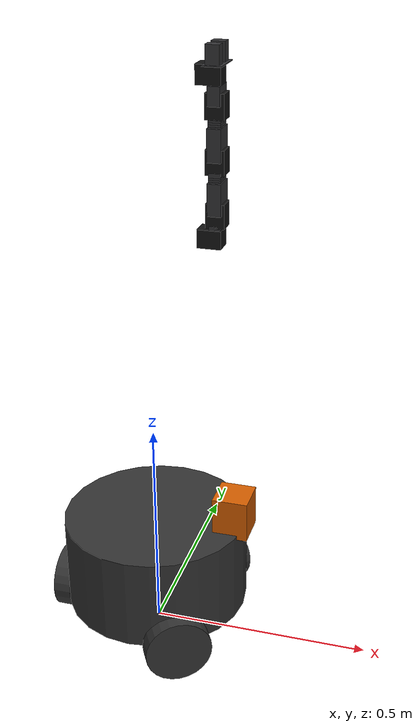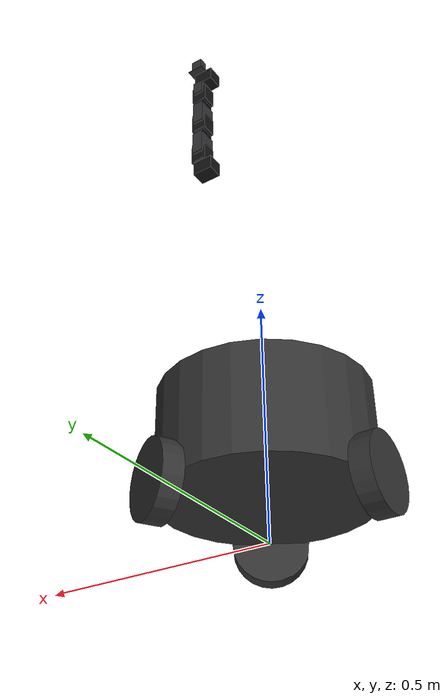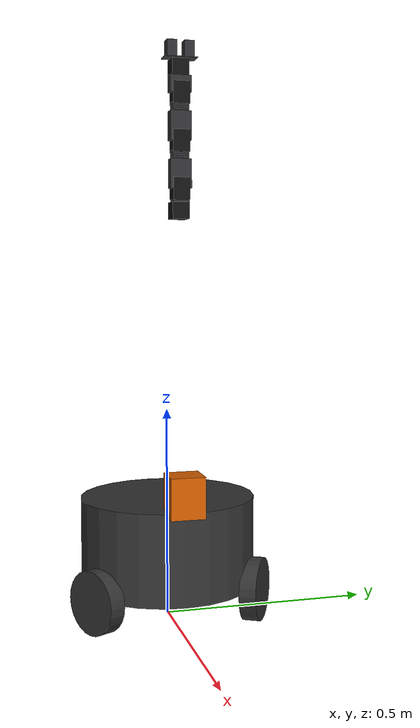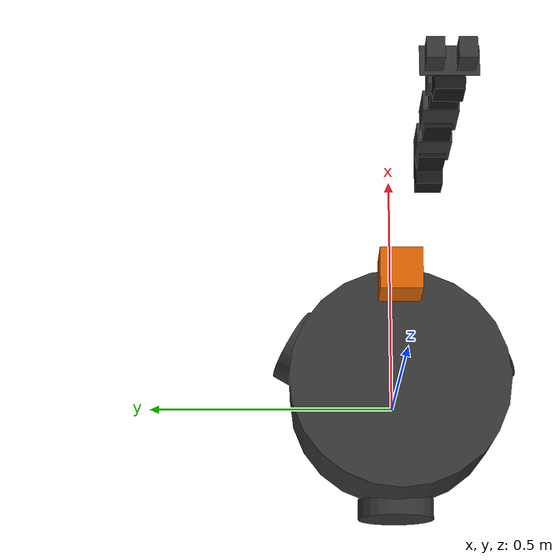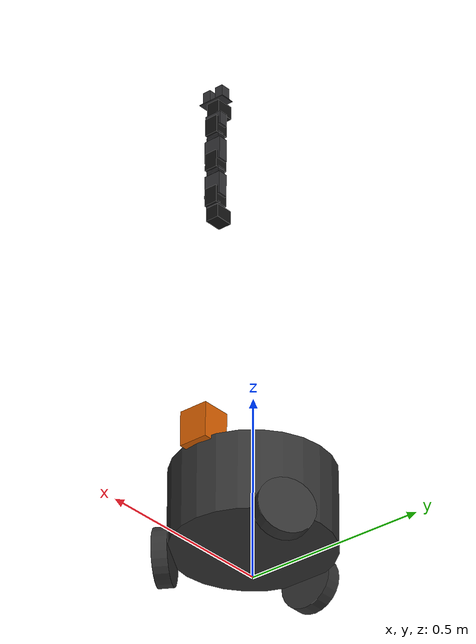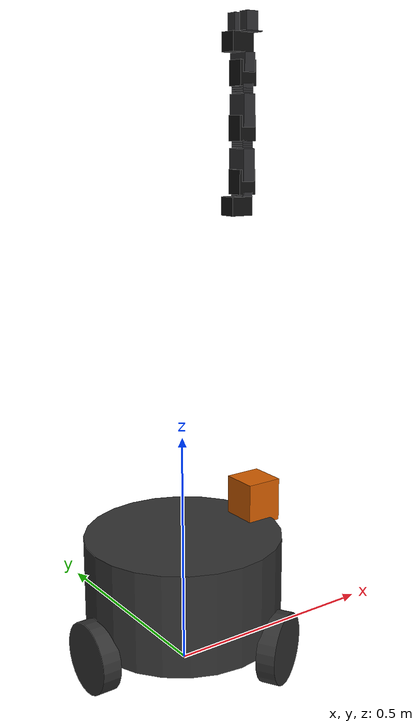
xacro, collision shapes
<?xml version="1.0" encoding="utf-8"?>
<!-- |    This document was autogenerated by xacro from miztli_arm.urdf                | -->
<!-- |    EDITING THIS FILE BY HAND IS NOT RECOMMENDED                                 | -->
<!-- |    This document was autogenerated by xacro from miztli.xacro                   | -->
<!-- |    EDITING THIS FILE BY HAND IS NOT RECOMMENDED                                 | -->
<robot name="justina">
  <gazebo reference="octo_base_link">
    <material>Gazebo/blue</material>
  </gazebo>
  <gazebo reference="wheel_left">
    <material>Gazebo/Black</material>
  </gazebo>
  <gazebo reference="wheel_right">
    <material>Gazebo/Black</material>
  </gazebo>
  <gazebo reference="wheel_front">
    <material>Gazebo/Black</material>
  </gazebo>
  <gazebo reference="wheel_back">
    <material>Gazebo/Black</material>
  </gazebo>
  <gazebo>
    <plugin filename="libgazebo_ros_control.so" name="gazebo_ros_control">
      <robotNamespace>/justina</robotNamespace>
    </plugin>
  </gazebo>
  <gazebo>
    <plugin filename="libgazebo_ros_diff_drive.so" name="differential_drive_controller">
      <legacyMode>false</legacyMode>
      <alwaysOn>true</alwaysOn>
      <updateRate>100</updateRate>
      <leftJoint>wheel_front_left_connect</leftJoint>
      <rightJoint>wheel_front_right_connect</rightJoint>
      <wheelSeparation>0.46</wheelSeparation>
      <wheelDiameter>0.12</wheelDiameter>
      <torque>20</torque>
      <commandTopic>justina/cmd_vel</commandTopic>
      <odometryTopic>justina/odom_diffdrive</odometryTopic>
      <odometryFrame>odom</odometryFrame>
      <robotBaseFrame>base_link</robotBaseFrame>
    </plugin>
  </gazebo>
  <gazebo reference="laser_link">
    <sensor name="head_hokuyo_sensor" type="gpu_ray">
      <pose>0 0 0 0 0 0</pose>
      <visualize>false</visualize>
      <update_rate>40</update_rate>
      <ray>
        <scan>
          <horizontal>
            <samples>720</samples>
            <resolution>1</resolution>
            <min_angle>-1.570796</min_angle>
            <max_angle>1.570796</max_angle>
          </horizontal>
        </scan>
        <range>
          <min>0.10</min>
          <max>30.0</max>
          <resolution>0.01</resolution>
        </range>
        <noise>
          <type>gaussian</type>
          <mean>0.0</mean>
          <stddev>0.01</stddev>
        </noise>
      </ray>
      <plugin filename="libgazebo_ros_gpu_laser.so" name="gazebo_ros_head_hokuyo_controller">
        <topicName>/rrbot/laser/scan</topicName>
        <frameName>laser_link</frameName>
      </plugin>
    </sensor>
  </gazebo>
  <material name="black">
    <color rgba="0.0 0.0 0.0 1.0"/>
  </material>
  <material name="blue">
    <color rgba="0.0 0.0 0.8 1.0"/>
  </material>
  <material name="green">
    <color rgba="0.0 0.8 0.0 1.0"/>
  </material>
  <material name="grey">
    <color rgba="0.2 0.2 0.2 1.0"/>
  </material>
  <material name="orange">
    <color rgba="1.0 0.423529411765 0.0392156862745 1.0"/>
  </material>
  <material name="brown">
    <color rgba="0.870588235294 0.811764705882 0.764705882353 1.0"/>
  </material>
  <material name="red">
    <color rgba="0.8 0.0 0.0 1.0"/>
  </material>
  <material name="white">
    <color rgba="1.0 1.0 1.0 1.0"/>
  </material>
  <link name="base_link"/>
  <joint name="hex_base_connect" type="fixed">
    <origin rpy="0 0 0" xyz="0 0 0"/>
    <parent link="base_link"/>
    <child link="hex_base_link"/>
  </joint>
  <link name="hex_base_link">
    <visual>
      <origin rpy="0.0 0 1.5708" xyz="0.0 0.0 0.075"/>
      <!-- origin xyz="0 0 0.1828" rpy="0 0 0"/ -->
      <geometry>
        <mesh filename="package://knowledge/hardware/stl/base/baseHex.dae"/>
        <!-- cylinder length="${base_height}" radius="${base_radius}"/ -->
      </geometry>
      <material name="grey"/>
    </visual>
    <collision>
      <origin rpy="0 0 0" xyz="0 0 0.1828"/>
      <geometry>
        <cylinder length="0.2156" radius="0.21"/>
      </geometry>
    </collision>
    <inertial>
      <origin rpy="0 0 0" xyz="0 0 0.1828"/>
      <mass value="2.0"/>
      <inertia ixx="0.0297972266667" ixy="0" ixz="0" iyy="0.0297972266667" iyz="0" izz="0.0441"/>
    </inertial>
  </link>
  <joint name="wheel_front_left_connect" type="continuous">
    <origin rpy="1.57078 0 -3.67" xyz="0.1091 0.189 0.075"/>
    <parent link="hex_base_link"/>
    <child link="wheel_front_left"/>
    <axis xyz="0 0 1"/>
  </joint>
  <link name="wheel_front_left">
    <visual>
      <origin rpy="0 3.1416 0" xyz="0 0 0"/>
      <geometry>
        <mesh filename="package://knowledge/hardware/stl/base/rueda.dae"/>
        <!-- cylinder length="${wheel_height}" radius="${wheel_radius}"/ -->
      </geometry>
      <material name="grey"/>
    </visual>
    <collision>
      <origin rpy="0 0 0" xyz="0 0 0"/>
      <geometry>
        <cylinder length="0.04" radius="0.075"/>
      </geometry>
    </collision>
    <inertial>
      <origin xyz="0 0 0"/>
      <mass value="0.52098"/>
      <inertia ixx="0.000802092125" ixy="0" ixz="0" iyy="0.000802092125" iyz="0" izz="0.00146525625"/>
    </inertial>
  </link>
  <joint name="wheel_back_connect" type="continuous">
    <origin rpy="1.57078 0 -1.5708" xyz="-0.2182 0 0.075"/>
    <parent link="hex_base_link"/>
    <child link="wheel_back"/>
    <axis xyz="0 0 1"/>
  </joint>
  <link name="wheel_back">
    <visual>
      <origin rpy="0 3.1416 0" xyz="0 0 0"/>
      <geometry>
        <mesh filename="package://knowledge/hardware/stl/base/rueda.dae"/>
        <!-- cylinder length="${wheel_height}" radius="${wheel_radius}"/ -->
      </geometry>
      <material name="grey"/>
    </visual>
    <collision>
      <origin rpy="0 0 0" xyz="0 0 0"/>
      <geometry>
        <cylinder length="0.04" radius="0.075"/>
      </geometry>
    </collision>
    <inertial>
      <origin rpy="0 0 0" xyz="0 0 0"/>
      <mass value="0.52098"/>
      <inertia ixx="0.000802092125" ixy="0" ixz="0" iyy="0.000802092125" iyz="0" izz="0.00146525625"/>
    </inertial>
  </link>
  <joint name="wheel_front_right_connect" type="continuous">
    <origin rpy="1.57078 0 3.67" xyz="0.1091 -0.189 0.075"/>
    <parent link="hex_base_link"/>
    <child link="wheel_front_right"/>
    <axis xyz="0 0 1"/>
  </joint>
  <link name="wheel_front_right">
    <visual>
      <origin rpy="0 0 0" xyz="0 0 0"/>
      <geometry>
        <mesh filename="package://knowledge/hardware/stl/base/rueda.dae"/>
        <!-- cylinder length="${wheel_height}" radius="${wheel_radius}"/ -->
      </geometry>
      <material name="grey"/>
    </visual>
    <collision>
      <origin rpy="0 0 0" xyz="0 0 0"/>
      <geometry>
        <cylinder length="0.04" radius="0.075"/>
      </geometry>
    </collision>
    <inertial>
      <origin rpy="0 0 0" xyz="0 0 0"/>
      <mass value="0.52098"/>
      <inertia ixx="0.000802092125" ixy="0" ixz="0" iyy="0.000802092125" iyz="0" izz="0.00146525625"/>
    </inertial>
  </link>
  <joint name="laser_connect" type="fixed">
    <origin xyz="0.187 0 0.3276"/>
    <parent link="hex_base_link"/>
    <child link="laser"/>
  </joint>
  <link name="laser">
    <collision>
      <origin rpy="0 0 0" xyz="0 0 0"/>
      <geometry>
        <box size="0.08 0.08 0.095"/>
      </geometry>
    </collision>
    <visual>
      <origin rpy="0 0 0" xyz="0 0 0"/>
      <geometry>
        <mesh filename="package://knowledge/hardware/stl/hokuyo.dae"/>
      </geometry>
    </visual>
    <inertial>
      <mass value="0.01"/>
      <origin rpy="0 0 0" xyz="0 0 0"/>
      <inertia ixx="1.28541666667e-05" ixy="0" ixz="0" iyy="1.28541666667e-05" iyz="0" izz="1.28541666667e-05"/>
    </inertial>
  </link>
  <!--
 #################################
	wheels links and Joint
  ################################
    -->
  <transmission name="tran1">
    <type>transmission_interface/SimpleTransmission</type>
    <joint name="wheel_front_left_connect">
      <hardwareInterface>hardware_interface/EffortJointInterface</hardwareInterface>
    </joint>
    <actuator name="motor1">
      <hardwareInterface>hardware_interface/EffortJointInterface</hardwareInterface>
      <mechanicalReduction>16</mechanicalReduction>
    </actuator>
  </transmission>
  <transmission name="tran2">
    <type>transmission_interface/SimpleTransmission</type>
    <joint name="wheel_back_left_connect">
      <hardwareInterface>hardware_interface/EffortJointInterface</hardwareInterface>
    </joint>
    <actuator name="motor2">
      <hardwareInterface>hardware_interface/EffortJointInterface</hardwareInterface>
      <mechanicalReduction>16</mechanicalReduction>
    </actuator>
  </transmission>
  <transmission name="tran3">
    <type>transmission_interface/SimpleTransmission</type>
    <joint name="wheel_back_right_connect">
      <hardwareInterface>hardware_interface/EffortJointInterface</hardwareInterface>
    </joint>
    <actuator name="motor3">
      <hardwareInterface>hardware_interface/EffortJointInterface</hardwareInterface>
      <mechanicalReduction>16</mechanicalReduction>
    </actuator>
  </transmission>
  <transmission name="tran4">
    <type>transmission_interface/SimpleTransmission</type>
    <joint name="wheel_front_right_connect">
      <hardwareInterface>hardware_interface/EffortJointInterface</hardwareInterface>
    </joint>
    <actuator name="motor4">
      <hardwareInterface>hardware_interface/EffortJointInterface</hardwareInterface>
      <mechanicalReduction>16</mechanicalReduction>
    </actuator>
  </transmission>
  <!-- Kinect o stereo camera-->
  <link name="camera_link">
    <visual>
      <geometry>
        <!--box size="0.06 0.28 0.08"/-->
        <box size="0.06 0.28 0.04"/>
      </geometry>
      <origin rpy="0 0 0" xyz="0 0 0"/>
    </visual>
  </link>
  <joint name="base_to_camera" type="fixed">
    <parent link="hex_base_link"/>
    <child link="camera_link"/>
    <origin rpy="0 0 0" xyz="-0.06 0.0 1.23"/>
  </joint>
  <!-- ************Arm************ -->
  <link name="arm_base_link">
    <visual>
      <geometry>
        <box size="0.05 0.02 0.04"/>
      </geometry>
      <origin rpy="0 0 0" xyz="0 0 0"/>
    </visual>
  </link>
  <joint name="base_to_arm" type="fixed">
    <parent link="hex_base_link"/>
    <child link="arm_base_link"/>
    <origin rpy="0 0 0" xyz="0.15 0.0 0.97"/>
  </joint>
  <!-- 300 degrees -->
  <material name="White">
    <color rgba="0.87 0.90 0.87 1.0"/>
  </material>
  <material name="Black">
    <color rgba="0.08 0.08 0.08 1.0"/>
  </material>
  <material name="Gray">
    <color rgba="0.2 0.2 0.21 1.0"/>
  </material>
  <material name="Green">
    <color rgba="0.22 0.32 0.14 1.0"/>
  </material>
  <!--link name="arm_base_link"/-->
  <joint name="arm_shoulder_pan_servo_joint" type="fixed">
    <origin rpy="1.57079632679 0 1.57079632679" xyz="0 0 0"/>
    <parent link="arm_base_link"/>
    <child link="arm_shoulder_pan_servo_link"/>
  </joint>
  <link name="arm_shoulder_pan_servo_link">
    <inertial>
      <mass value="0.055"/>
      <origin xyz="0 0 -0.01241"/>
      <inertia ixx="1.80766666667e-05" ixy="0" ixz="0" iyy="1.82519791667e-05" iyz="0" izz="1.34119791667e-05"/>
    </inertial>
    <visual>
      <origin rpy="0 0 0" xyz="0 0 0"/>
      <geometry>
        <mesh filename="package://pincher_arm_description/meshes/ax12_box.stl" scale="0.001 0.001 0.001"/>
      </geometry>
      <material name="Black"/>
    </visual>
    <collision>
      <origin rpy="0 0 0" xyz="0.0 0.0 -0.01241"/>
      <geometry>
        <box size="0.0385 0.038 0.05"/>
      </geometry>
    </collision>
  </link>
  <gazebo reference="arm_shoulder_pan_servo_link">
    <material>Gazebo/Black</material>
    <selfCollide>true</selfCollide>
    <gravity>true</gravity>
  </gazebo>
  <joint name="arm_shoulder_pan_joint" type="revolute">
    <origin rpy="-1.57079632679 1.57079632679 3.14159265359" xyz="0 0.019 0"/>
    <axis xyz="0 0 -1"/>
    <limit effort="30" lower="-2.617" upper="2.617" velocity="1.571"/>
    <dynamics friction="0.13"/>
    <parent link="arm_shoulder_pan_servo_link"/>
    <child link="arm_shoulder_pan_link"/>
  </joint>
  <link name="arm_shoulder_pan_link">
    <inertial>
      <mass value="0.008"/>
      <origin xyz="0 0 0"/>
      <inertia ixx="1.01666666667e-06" ixy="0" ixz="0" iyy="4.70666666667e-07" iyz="0" izz="1.37933333333e-06"/>
    </inertial>
    <visual>
      <origin rpy="0 0 0" xyz="0 0 0"/>
      <geometry>
        <mesh filename="package://pincher_arm_description/meshes/F3.stl" scale="0.001 0.001 0.001"/>
      </geometry>
      <material name="Gray"/>
    </visual>
    <collision>
      <origin rpy="0 0 0" xyz="0.0 0.0 -0.0045"/>
      <geometry>
        <box size="0.025 0.038 0.009"/>
      </geometry>
    </collision>
  </link>
  <gazebo reference="arm_shoulder_pan_link">
    <material>Gazebo/Gray</material>
    <selfCollide>true</selfCollide>
    <gravity>true</gravity>
  </gazebo>
  <joint name="arm_shoulder_lift_servo_joint" type="fixed">
    <origin rpy="0 3.14159265359 0" xyz="0 0 -0.0415"/>
    <parent link="arm_shoulder_pan_link"/>
    <child link="arm_shoulder_lift_servo_link"/>
  </joint>
  <link name="arm_shoulder_lift_servo_link">
    <inertial>
      <mass value="0.055"/>
      <origin xyz="0 0 -0.01241"/>
      <inertia ixx="1.80766666667e-05" ixy="0" ixz="0" iyy="1.82519791667e-05" iyz="0" izz="1.34119791667e-05"/>
    </inertial>
    <visual>
      <origin rpy="0 0 0" xyz="0 0 0"/>
      <geometry>
        <mesh filename="package://pincher_arm_description/meshes/ax12_box.stl" scale="0.001 0.001 0.001"/>
      </geometry>
      <material name="Black"/>
    </visual>
    <collision>
      <origin rpy="0 0 0" xyz="0.0 0.0 -0.01241"/>
      <geometry>
        <box size="0.0385 0.038 0.05"/>
      </geometry>
    </collision>
  </link>
  <gazebo reference="arm_shoulder_lift_servo_link">
    <material>Gazebo/Black</material>
    <selfCollide>true</selfCollide>
    <gravity>true</gravity>
  </gazebo>
  <joint name="arm_shoulder_lift_joint" type="revolute">
    <origin rpy="0 0 0" xyz="0 0 0"/>
    <axis xyz="0 1 0"/>
    <limit effort="30" lower="-2.09" upper="2.09" velocity="1.571"/>
    <dynamics friction="0.13"/>
    <parent link="arm_shoulder_lift_servo_link"/>
    <child link="arm_shoulder_lift_link"/>
  </joint>
  <link name="arm_shoulder_lift_link">
    <inertial>
      <mass value="0.016"/>
      <origin xyz="0 0 0"/>
      <inertia ixx="8.76966666667e-06" ixy="0" ixz="0" iyy="6.67866666667e-06" iyz="0" izz="4.18166666667e-06"/>
    </inertial>
    <visual>
      <origin rpy="0 0 0" xyz="0 0 0"/>
      <geometry>
        <mesh filename="package://pincher_arm_description/meshes/F4.stl" scale="0.001 0.001 0.001"/>
      </geometry>
      <material name="Gray"/>
    </visual>
    <collision>
      <origin rpy="0 0 0" xyz="0.0 0.0 0.0215"/>
      <geometry>
        <box size="0.028 0.0485 0.065"/>
      </geometry>
    </collision>
  </link>
  <gazebo reference="arm_shoulder_lift_link">
    <material>Gazebo/Gray</material>
    <selfCollide>true</selfCollide>
    <gravity>true</gravity>
  </gazebo>
  <joint name="arm_shoulder_F10_0_joint" type="fixed">
    <origin rpy="0 0 0" xyz="0 0 0.0545"/>
    <parent link="arm_shoulder_lift_link"/>
    <child link="arm_shoulder_F10_0_link"/>
  </joint>
  <link name="arm_shoulder_F10_0_link">
    <inertial>
      <mass value="0.004"/>
      <origin xyz="0 0 0"/>
      <inertia ixx="4.86666666667e-07" ixy="0" ixz="0" iyy="2.13666666667e-07" iyz="0" izz="6.89666666667e-07"/>
    </inertial>
    <visual>
      <origin rpy="0 0 0" xyz="0 0 0"/>
      <geometry>
        <mesh filename="package://pincher_arm_description/meshes/F10.stl" scale="0.001 0.001 0.001"/>
      </geometry>
      <material name="Gray"/>
    </visual>
    <collision>
      <origin rpy="0 0 0" xyz="0.0 0.0 0.0"/>
      <geometry>
        <box size="0.025 0.038 0.004"/>
      </geometry>
    </collision>
  </link>
  <gazebo reference="arm_shoulder_F10_0_link">
    <material>Gazebo/Gray</material>
    <selfCollide>true</selfCollide>
    <gravity>true</gravity>
  </gazebo>
  <joint name="arm_shoulder_F10_1_joint" type="fixed">
    <origin rpy="0 0 0" xyz="0 0 0.004"/>
    <parent link="arm_shoulder_F10_0_link"/>
    <child link="arm_shoulder_F10_1_link"/>
  </joint>
  <link name="arm_shoulder_F10_1_link">
    <inertial>
      <mass value="0.004"/>
      <origin xyz="0 0 0"/>
      <inertia ixx="4.86666666667e-07" ixy="0" ixz="0" iyy="2.13666666667e-07" iyz="0" izz="6.89666666667e-07"/>
    </inertial>
    <visual>
      <origin rpy="0 0 0" xyz="0 0 0"/>
      <geometry>
        <mesh filename="package://pincher_arm_description/meshes/F10.stl" scale="0.001 0.001 0.001"/>
      </geometry>
      <material name="Gray"/>
    </visual>
    <collision>
      <origin rpy="0 0 0" xyz="0.0 0.0 0.0"/>
      <geometry>
        <box size="0.025 0.038 0.004"/>
      </geometry>
    </collision>
  </link>
  <gazebo reference="arm_shoulder_F10_1_link">
    <material>Gazebo/Gray</material>
    <selfCollide>true</selfCollide>
    <gravity>true</gravity>
  </gazebo>
  <joint name="arm_shoulder_F10_2_joint" type="fixed">
    <origin rpy="0 0 0" xyz="0 0 0.004"/>
    <parent link="arm_shoulder_F10_1_link"/>
    <child link="arm_shoulder_F10_2_link"/>
  </joint>
  <link name="arm_shoulder_F10_2_link">
    <inertial>
      <mass value="0.004"/>
      <origin xyz="0 0 0"/>
      <inertia ixx="4.86666666667e-07" ixy="0" ixz="0" iyy="2.13666666667e-07" iyz="0" izz="6.89666666667e-07"/>
    </inertial>
    <visual>
      <origin rpy="0 0 0" xyz="0 0 0"/>
      <geometry>
        <mesh filename="package://pincher_arm_description/meshes/F10.stl" scale="0.001 0.001 0.001"/>
      </geometry>
      <material name="Gray"/>
    </visual>
    <collision>
      <origin rpy="0 0 0" xyz="0.0 0.0 0.0"/>
      <geometry>
        <box size="0.025 0.038 0.004"/>
      </geometry>
    </collision>
  </link>
  <gazebo reference="arm_shoulder_F10_2_link">
    <material>Gazebo/Gray</material>
    <selfCollide>true</selfCollide>
    <gravity>true</gravity>
  </gazebo>
  <joint name="arm_shoulder_F3_0_joint" type="fixed">
    <origin rpy="0 3.14159265359 0" xyz="0 0 0.002"/>
    <parent link="arm_shoulder_F10_2_link"/>
    <child link="arm_shoulder_F3_0_link"/>
  </joint>
  <link name="arm_shoulder_F3_0_link">
    <inertial>
      <mass value="0.005"/>
      <origin xyz="0 0 0"/>
      <inertia ixx="6.35416666667e-07" ixy="0" ixz="0" iyy="2.94166666667e-07" iyz="0" izz="8.62083333333e-07"/>
    </inertial>
    <visual>
      <origin rpy="0 0 0" xyz="0 0 0"/>
      <geometry>
        <mesh filename="package://pincher_arm_description/meshes/F3.stl" scale="0.001 0.001 0.001"/>
      </geometry>
      <material name="Gray"/>
    </visual>
    <collision>
      <origin rpy="0 0 0" xyz="0.0 0.0 -0.0045"/>
      <geometry>
        <box size="0.025 0.038 0.009"/>
      </geometry>
    </collision>
  </link>
  <gazebo reference="arm_shoulder_F3_0_link">
    <material>Gazebo/Gray</material>
    <selfCollide>true</selfCollide>
    <gravity>true</gravity>
  </gazebo>
  <joint name="arm_elbow_flex_servo_joint" type="fixed">
    <origin rpy="0 3.14159265359 0" xyz="0 0 -0.0415"/>
    <parent link="arm_shoulder_F3_0_link"/>
    <child link="arm_elbow_flex_servo_link"/>
  </joint>
  <link name="arm_elbow_flex_servo_link">
    <inertial>
      <mass value="0.055"/>
      <origin xyz="0 0 -0.01241"/>
      <inertia ixx="1.80766666667e-05" ixy="0" ixz="0" iyy="1.82519791667e-05" iyz="0" izz="1.34119791667e-05"/>
    </inertial>
    <visual>
      <origin rpy="0 0 0" xyz="0 0 0"/>
      <geometry>
        <mesh filename="package://pincher_arm_description/meshes/ax12_box.stl" scale="0.001 0.001 0.001"/>
      </geometry>
      <material name="Black"/>
    </visual>
    <collision>
      <origin rpy="0 0 0" xyz="0.0 0.0 -0.01241"/>
      <geometry>
        <box size="0.0385 0.038 0.05"/>
      </geometry>
    </collision>
  </link>
  <gazebo reference="arm_elbow_flex_servo_link">
    <material>Gazebo/Black</material>
    <selfCollide>true</selfCollide>
    <gravity>true</gravity>
  </gazebo>
  <joint name="arm_elbow_flex_joint" type="revolute">
    <origin rpy="0 0 0" xyz="0 0 0"/>
    <axis xyz="0 1 0"/>
    <limit effort="30" lower="-2.42" upper="2.42" velocity="1.571"/>
    <dynamics friction="0.13"/>
    <parent link="arm_elbow_flex_servo_link"/>
    <child link="arm_elbow_flex_link"/>
  </joint>
  <link name="arm_elbow_flex_link">
    <inertial>
      <mass value="0.016"/>
      <origin xyz="0 0 0"/>
      <inertia ixx="8.76966666667e-06" ixy="0" ixz="0" iyy="6.67866666667e-06" iyz="0" izz="4.18166666667e-06"/>
    </inertial>
    <visual>
      <origin rpy="0 0 0" xyz="0 0 0"/>
      <geometry>
        <mesh filename="package://pincher_arm_description/meshes/F4.stl" scale="0.001 0.001 0.001"/>
      </geometry>
      <material name="Gray"/>
    </visual>
    <collision>
      <origin rpy="0 0 0" xyz="0.0 0.0 0.0215"/>
      <geometry>
        <box size="0.028 0.0485 0.065"/>
      </geometry>
    </collision>
  </link>
  <gazebo reference="arm_elbow_flex_link">
    <material>Gazebo/Gray</material>
    <selfCollide>true</selfCollide>
    <gravity>true</gravity>
  </gazebo>
  <joint name="arm_elbow_F10_0_joint" type="fixed">
    <origin rpy="0 0 0" xyz="0 0 0.0545"/>
    <parent link="arm_elbow_flex_link"/>
    <child link="arm_elbow_F10_0_link"/>
  </joint>
  <link name="arm_elbow_F10_0_link">
    <inertial>
      <mass value="0.004"/>
      <origin xyz="0 0 0"/>
      <inertia ixx="4.86666666667e-07" ixy="0" ixz="0" iyy="2.13666666667e-07" iyz="0" izz="6.89666666667e-07"/>
    </inertial>
    <visual>
      <origin rpy="0 0 0" xyz="0 0 0"/>
      <geometry>
        <mesh filename="package://pincher_arm_description/meshes/F10.stl" scale="0.001 0.001 0.001"/>
      </geometry>
      <material name="Gray"/>
    </visual>
    <collision>
      <origin rpy="0 0 0" xyz="0.0 0.0 0.0"/>
      <geometry>
        <box size="0.025 0.038 0.004"/>
      </geometry>
    </collision>
  </link>
  <gazebo reference="arm_elbow_F10_0_link">
    <material>Gazebo/Gray</material>
    <selfCollide>true</selfCollide>
    <gravity>true</gravity>
  </gazebo>
  <joint name="arm_elbow_F10_1_joint" type="fixed">
    <origin rpy="0 0 0" xyz="0 0 0.004"/>
    <parent link="arm_elbow_F10_0_link"/>
    <child link="arm_elbow_F10_1_link"/>
  </joint>
  <link name="arm_elbow_F10_1_link">
    <inertial>
      <mass value="0.004"/>
      <origin xyz="0 0 0"/>
      <inertia ixx="4.86666666667e-07" ixy="0" ixz="0" iyy="2.13666666667e-07" iyz="0" izz="6.89666666667e-07"/>
    </inertial>
    <visual>
      <origin rpy="0 0 0" xyz="0 0 0"/>
      <geometry>
        <mesh filename="package://pincher_arm_description/meshes/F10.stl" scale="0.001 0.001 0.001"/>
      </geometry>
      <material name="Gray"/>
    </visual>
    <collision>
      <origin rpy="0 0 0" xyz="0.0 0.0 0.0"/>
      <geometry>
        <box size="0.025 0.038 0.004"/>
      </geometry>
    </collision>
  </link>
  <gazebo reference="arm_elbow_F10_1_link">
    <material>Gazebo/Gray</material>
    <selfCollide>true</selfCollide>
    <gravity>true</gravity>
  </gazebo>
  <joint name="arm_elbow_F10_2_joint" type="fixed">
    <origin rpy="0 0 0" xyz="0 0 0.004"/>
    <parent link="arm_elbow_F10_1_link"/>
    <child link="arm_elbow_F10_2_link"/>
  </joint>
  <link name="arm_elbow_F10_2_link">
    <inertial>
      <mass value="0.004"/>
      <origin xyz="0 0 0"/>
      <inertia ixx="4.86666666667e-07" ixy="0" ixz="0" iyy="2.13666666667e-07" iyz="0" izz="6.89666666667e-07"/>
    </inertial>
    <visual>
      <origin rpy="0 0 0" xyz="0 0 0"/>
      <geometry>
        <mesh filename="package://pincher_arm_description/meshes/F10.stl" scale="0.001 0.001 0.001"/>
      </geometry>
      <material name="Gray"/>
    </visual>
    <collision>
      <origin rpy="0 0 0" xyz="0.0 0.0 0.0"/>
      <geometry>
        <box size="0.025 0.038 0.004"/>
      </geometry>
    </collision>
  </link>
  <gazebo reference="arm_elbow_F10_2_link">
    <material>Gazebo/Gray</material>
    <selfCollide>true</selfCollide>
    <gravity>true</gravity>
  </gazebo>
  <joint name="arm_elbow_F3_0_joint" type="fixed">
    <origin rpy="0 3.14159265359 0" xyz="0 0 0.002"/>
    <parent link="arm_elbow_F10_2_link"/>
    <child link="arm_elbow_F3_0_link"/>
  </joint>
  <link name="arm_elbow_F3_0_link">
    <inertial>
      <mass value="0.005"/>
      <origin xyz="0 0 0"/>
      <inertia ixx="6.35416666667e-07" ixy="0" ixz="0" iyy="2.94166666667e-07" iyz="0" izz="8.62083333333e-07"/>
    </inertial>
    <visual>
      <origin rpy="0 0 0" xyz="0 0 0"/>
      <geometry>
        <mesh filename="package://pincher_arm_description/meshes/F3.stl" scale="0.001 0.001 0.001"/>
      </geometry>
      <material name="Gray"/>
    </visual>
    <collision>
      <origin rpy="0 0 0" xyz="0.0 0.0 -0.0045"/>
      <geometry>
        <box size="0.025 0.038 0.009"/>
      </geometry>
    </collision>
  </link>
  <gazebo reference="arm_elbow_F3_0_link">
    <material>Gazebo/Gray</material>
    <selfCollide>true</selfCollide>
    <gravity>true</gravity>
  </gazebo>
  <joint name="arm_wrist_flex_servo_joint" type="fixed">
    <origin rpy="0 3.14159265359 0" xyz="0 0 -0.0415"/>
    <parent link="arm_elbow_F3_0_link"/>
    <child link="arm_wrist_flex_servo_link"/>
  </joint>
  <link name="arm_wrist_flex_servo_link">
    <inertial>
      <mass value="0.055"/>
      <origin xyz="0 0 -0.01241"/>
      <inertia ixx="1.80766666667e-05" ixy="0" ixz="0" iyy="1.82519791667e-05" iyz="0" izz="1.34119791667e-05"/>
    </inertial>
    <visual>
      <origin rpy="0 0 0" xyz="0 0 0"/>
      <geometry>
        <mesh filename="package://pincher_arm_description/meshes/ax12_box.stl" scale="0.001 0.001 0.001"/>
      </geometry>
      <material name="Black"/>
    </visual>
    <collision>
      <origin rpy="0 0 0" xyz="0.0 0.0 -0.01241"/>
      <geometry>
        <box size="0.0385 0.038 0.05"/>
      </geometry>
    </collision>
  </link>
  <gazebo reference="arm_wrist_flex_servo_link">
    <material>Gazebo/Black</material>
    <selfCollide>true</selfCollide>
    <gravity>true</gravity>
  </gazebo>
  <joint name="arm_wrist_flex_joint" type="revolute">
    <origin rpy="0 0 0" xyz="0 0 0"/>
    <axis xyz="0 1 0"/>
    <limit effort="30" lower="-1.71" upper="1.79" velocity="1.571"/>
    <dynamics friction="0.13"/>
    <parent link="arm_wrist_flex_servo_link"/>
    <child link="arm_wrist_flex_link"/>
  </joint>
  <link name="arm_wrist_flex_link">
    <inertial>
      <mass value="0.01"/>
      <origin xyz="0 0 0"/>
      <inertia ixx="3.13208333333e-06" ixy="0" ixz="0" iyy="1.69270833333e-06" iyz="0" izz="2.48104166667e-06"/>
    </inertial>
    <visual>
      <origin rpy="0 0 0" xyz="0 0 0"/>
      <geometry>
        <mesh filename="package://pincher_arm_description/meshes/F2.stl" scale="0.001 0.001 0.001"/>
      </geometry>
      <material name="Gray"/>
    </visual>
    <collision>
      <origin rpy="0 0 0" xyz="0.0 0.0 0.00775"/>
      <geometry>
        <box size="0.025 0.0485 0.0375"/>
      </geometry>
    </collision>
  </link>
  <gazebo reference="arm_wrist_flex_link">
    <material>Gazebo/Gray</material>
    <selfCollide>true</selfCollide>
    <gravity>true</gravity>
  </gazebo>
  <joint name="arm_wrist_F3_0_joint" type="fixed">
    <origin rpy="0 3.14159265359 -3.14159265359" xyz="0 0 0.0265"/>
    <parent link="arm_wrist_flex_link"/>
    <child link="arm_wrist_F3_0_link"/>
  </joint>
  <link name="arm_wrist_F3_0_link">
    <inertial>
      <mass value="0.005"/>
      <origin xyz="0 0 0"/>
      <inertia ixx="6.35416666667e-07" ixy="0" ixz="0" iyy="2.94166666667e-07" iyz="0" izz="8.62083333333e-07"/>
    </inertial>
    <visual>
      <origin rpy="0 0 0" xyz="0 0 0"/>
      <geometry>
        <mesh filename="package://pincher_arm_description/meshes/F3.stl" scale="0.001 0.001 0.001"/>
      </geometry>
      <material name="Gray"/>
    </visual>
    <collision>
      <origin rpy="0 0 0" xyz="0.0 0.0 -0.0045"/>
      <geometry>
        <box size="0.025 0.038 0.009"/>
      </geometry>
    </collision>
  </link>
  <gazebo reference="arm_wrist_F3_0_link">
    <material>Gazebo/Gray</material>
    <selfCollide>true</selfCollide>
    <gravity>true</gravity>
  </gazebo>
  <joint name="gripper_servo_joint" type="fixed">
    <origin rpy="1.57079632679 3.14159265359 1.57079632679" xyz="0 0 -0.019"/>
    <parent link="arm_wrist_F3_0_link"/>
    <child link="gripper_servo_link"/>
  </joint>
  <link name="gripper_servo_link">
    <inertial>
      <mass value="0.055"/>
      <origin xyz="0 0 -0.01241"/>
      <inertia ixx="1.80766666667e-05" ixy="0" ixz="0" iyy="1.82519791667e-05" iyz="0" izz="1.34119791667e-05"/>
    </inertial>
    <visual>
      <origin rpy="0 0 0" xyz="0 0 0"/>
      <geometry>
        <mesh filename="package://pincher_arm_description/meshes/ax12_box.stl" scale="0.001 0.001 0.001"/>
      </geometry>
      <material name="Black"/>
    </visual>
    <collision>
      <origin rpy="0 0 0" xyz="0.0 0.0 -0.01241"/>
      <geometry>
        <box size="0.0385 0.038 0.05"/>
      </geometry>
    </collision>
  </link>
  <gazebo reference="gripper_servo_link">
    <material>Gazebo/Black</material>
    <selfCollide>true</selfCollide>
    <gravity>true</gravity>
  </gazebo>
  <joint name="gripper_finger_base_joint" type="fixed">
    <origin rpy="3.14159265359 0 1.57079632679" xyz="0  0.019 0"/>
    <parent link="gripper_servo_link"/>
    <child link="gripper_finger_base_link"/>
  </joint>
  <link name="gripper_finger_base_link">
    <inertial>
      <mass value="1e-05"/>
      <origin xyz="0 0 0"/>
      <inertia ixx="6.02083333333e-09" ixy="0" ixz="0" iyy="1.33666666667e-09" iyz="0" izz="4.69083333333e-09"/>
    </inertial>
    <visual>
      <origin rpy="0 0 0" xyz="0 0 0"/>
      <geometry>
        <box size="0.002 0.075 0.040"/>
      </geometry>
      <material name="Gray"/>
    </visual>
    <collision>
      <geometry>
        <box size="0.002 0.075 0.040"/>
      </geometry>
    </collision>
  </link>
  <gazebo reference="gripper_finger_base_link">
    <material>Gazebo/Gray</material>
    <selfCollide>true</selfCollide>
    <gravity>true</gravity>
  </gazebo>
  <link name="gripper_active_link"/>
  <joint name="gripper_joint" type="revolute">
    <origin rpy="0 0 0" xyz="0 0 0"/>
    <axis xyz="1 0 0"/>
    <limit effort="30" lower="-2.6" upper="0.0" velocity="1.571"/>
    <parent link="gripper_finger_base_link"/>
    <child link="gripper_active_link"/>
  </joint>
  <link name="gripper_finger1_link">
    <inertial>
      <mass value="1e-05"/>
      <origin xyz="0 0 0"/>
      <inertia ixx="6.66666666667e-10" ixy="0" ixz="0" iyy="1.09333333333e-09" iyz="0" izz="1.73333333333e-09"/>
    </inertial>
    <visual>
      <origin rpy="1.57079632679 0 1.57079632679" xyz="0 0.0115 0"/>
      <geometry>
        <mesh filename="package://pincher_arm_description/meshes/pincher_finger.stl" scale=".01 .01 .01"/>
      </geometry>
      <material name="Gray"/>
    </visual>
    <collision>
      <origin rpy="1.57079632679 0 1.57079632679" xyz="0 0.0115 0"/>
      <geometry>
        <box size="0.023 0.028 0.038"/>
      </geometry>
    </collision>
  </link>
  <gazebo reference="gripper_finger1_link">
    <material>Gazebo/Gray</material>
    <selfCollide>true</selfCollide>
    <gravity>true</gravity>
  </gazebo>
  <joint name="gripper_finger1_joint" type="prismatic">
    <origin rpy="0 0 0" xyz="0.019 0 0"/>
    <axis xyz="0 1 0"/>
    <limit effort="30" lower="0.001" upper="0.0158" velocity="0.01"/>
    <parent link="gripper_finger_base_link"/>
    <child link="gripper_finger1_link"/>
  </joint>
  <link name="gripper_finger2_link">
    <inertial>
      <mass value="1e-05"/>
      <origin xyz="0 0 0"/>
      <inertia ixx="6.66666666667e-10" ixy="0" ixz="0" iyy="1.09333333333e-09" iyz="0" izz="1.73333333333e-09"/>
    </inertial>
    <visual>
      <origin rpy="1.57079632679 0 1.57079632679" xyz="0 0.0115 0"/>
      <geometry>
        <mesh filename="package://pincher_arm_description/meshes/pincher_finger.stl" scale=".01 .01 .01"/>
      </geometry>
      <material name="Gray"/>
    </visual>
    <collision>
      <origin rpy="1.57079632679 0 1.57079632679" xyz="0 0.0115 0"/>
      <geometry>
        <box size="0.023 0.028 0.038"/>
      </geometry>
    </collision>
  </link>
  <gazebo reference="gripper_finger2_link">
    <material>Gazebo/Gray</material>
    <selfCollide>true</selfCollide>
    <gravity>true</gravity>
  </gazebo>
  <joint name="gripper_finger2_joint" type="prismatic">
    <origin rpy="3.14159265359 0 0" xyz="0.019 0 0"/>
    <axis xyz="0 1 0"/>
    <limit effort="30" lower="0.001" upper="0.0158" velocity="0.01"/>
    <parent link="gripper_finger_base_link"/>
    <child link="gripper_finger2_link"/>
  </joint>
  <!-- fake gripper joint -->
  <link name="gripper_fake_link"/>
  <joint name="gripper_fake_joint" type="revolute">
    <origin rpy="0 0 0" xyz="0.02 0 0"/>
    <parent link="gripper_finger_base_link"/>
    <child link="gripper_fake_link"/>
    <limit effort="30" lower="-3.14" upper="3.14" velocity="1"/>
    <axis xyz="1 0 0"/>
  </joint>
</robot>
